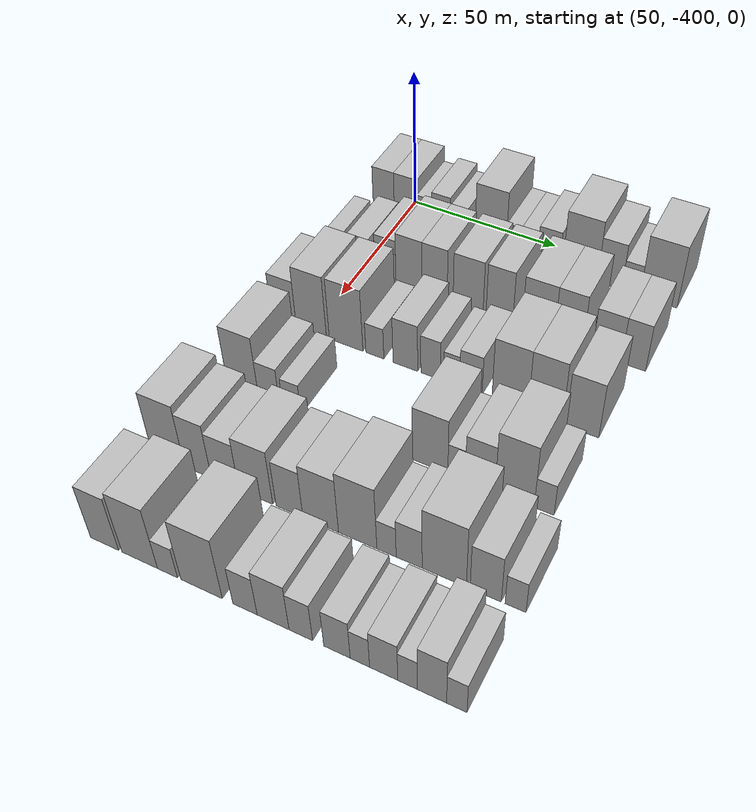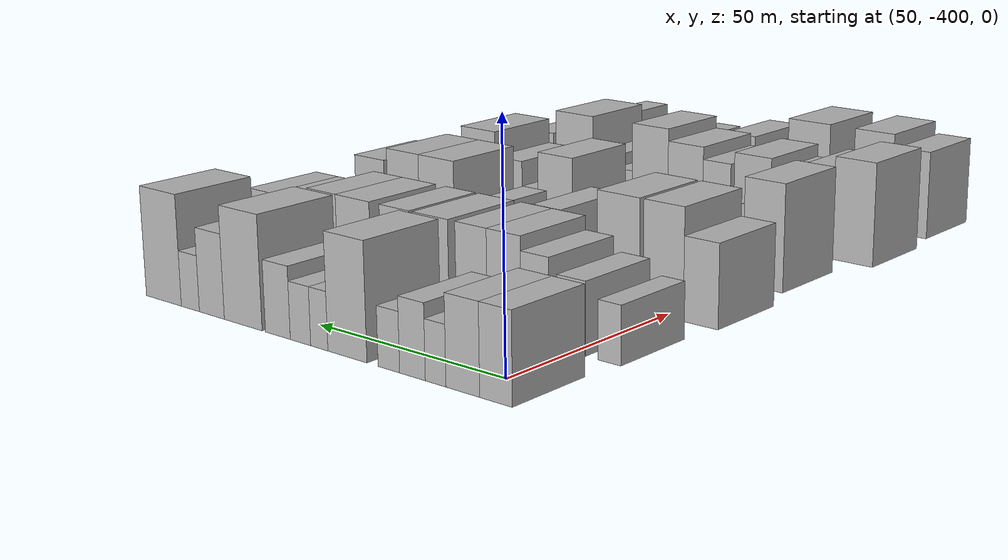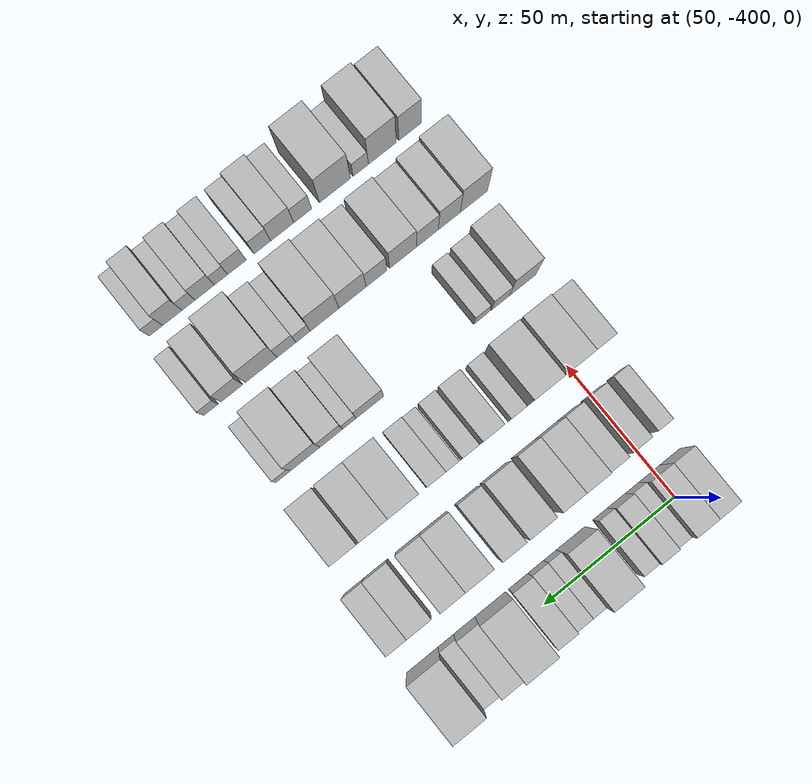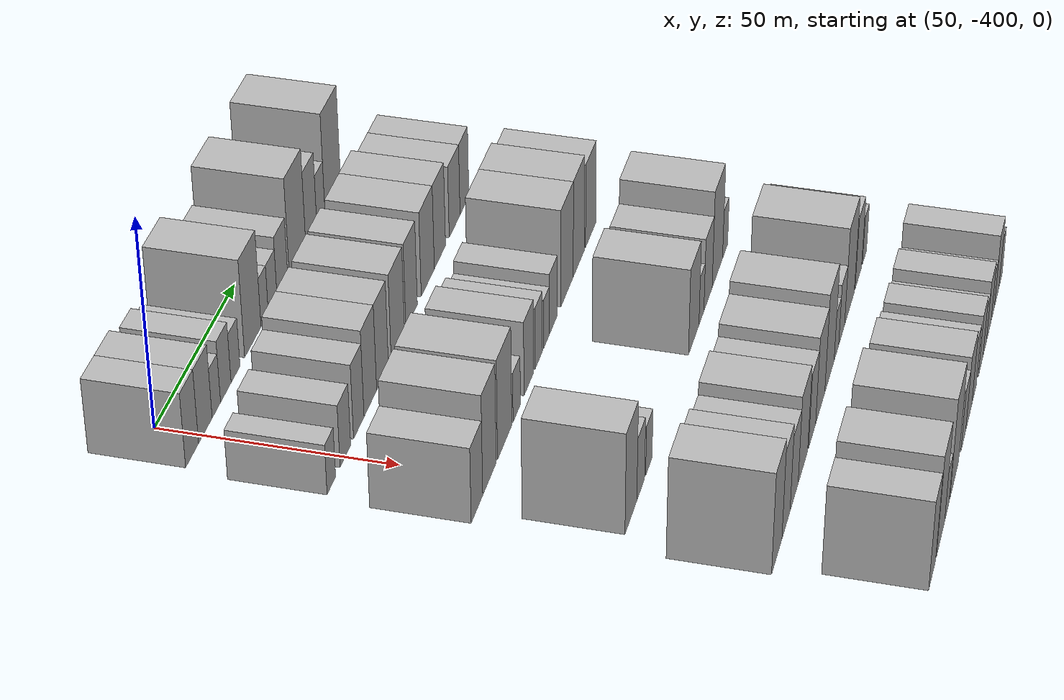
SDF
<sdf version="1.6">
 <world name="default">
  <model name="building_11">
   <static>1</static>
   <pose>50.0000 -406.6065 0 0.000000 0.000000 0.000000</pose>
   <link name="link">
    <pose>0 0 9.00 0 0 0</pose>
    <collision name="collision"><geometry><box><size>20.0000 7.7887 18.0000</size></box></geometry></collision>
    <visual name="visual">
     <cast_shadows>0</cast_shadows>
     <geometry><box><size>20.0000 7.7887 18.0000</size></box></geometry>
     <material>
      <script>
       <uri>model://HANNAS_wall/materials/scripts</uri>
       <uri>model://HANNAS_wall/materials/textures</uri>
       <name>vrc/HANNAS_wall</name>
      </script>
     </material>
    </visual>
   </link>
  </model>
  <model name="building_12">
   <static>1</static>
   <pose>50.0000 -398.5526 0 0.000000 0.000000 0.000000</pose>
   <link name="link">
    <pose>0 0 9.00 0 0 0</pose>
    <collision name="collision"><geometry><box><size>20.0000 8.3190 18.0000</size></box></geometry></collision>
    <visual name="visual">
     <cast_shadows>0</cast_shadows>
     <geometry><box><size>20.0000 8.3190 18.0000</size></box></geometry>
     <material>
      <script>
       <uri>model://HANNAS_wall/materials/scripts</uri>
       <uri>model://HANNAS_wall/materials/textures</uri>
       <name>vrc/HANNAS_wall</name>
      </script>
     </material>
    </visual>
   </link>
  </model>
  <model name="building_13">
   <static>1</static>
   <pose>50.0000 -391.7792 0 0.000000 0.000000 0.000000</pose>
   <link name="link">
    <pose>0 0 6.00 0 0 0</pose>
    <collision name="collision"><geometry><box><size>20.0000 5.2278 12.0000</size></box></geometry></collision>
    <visual name="visual">
     <cast_shadows>0</cast_shadows>
     <geometry><box><size>20.0000 5.2278 12.0000</size></box></geometry>
     <material>
      <script>
       <uri>model://HANNAS_wall/materials/scripts</uri>
       <uri>model://HANNAS_wall/materials/textures</uri>
       <name>vrc/HANNAS_wall</name>
      </script>
     </material>
    </visual>
   </link>
  </model>
  <model name="building_14">
   <static>1</static>
   <pose>50.0000 -385.8373 0 0.000000 0.000000 0.000000</pose>
   <link name="link">
    <pose>0 0 7.50 0 0 0</pose>
    <collision name="collision"><geometry><box><size>20.0000 6.6561 15.0000</size></box></geometry></collision>
    <visual name="visual">
     <cast_shadows>0</cast_shadows>
     <geometry><box><size>20.0000 6.6561 15.0000</size></box></geometry>
     <material>
      <script>
       <uri>model://HANNAS_wall/materials/scripts</uri>
       <uri>model://HANNAS_wall/materials/textures</uri>
       <name>vrc/HANNAS_wall</name>
      </script>
     </material>
    </visual>
   </link>
  </model>
  <model name="building_15">
   <static>1</static>
   <pose>50.0000 -379.6564 0 0.000000 0.000000 0.000000</pose>
   <link name="link">
    <pose>0 0 6.00 0 0 0</pose>
    <collision name="collision"><geometry><box><size>20.0000 5.7058 12.0000</size></box></geometry></collision>
    <visual name="visual">
     <cast_shadows>0</cast_shadows>
     <geometry><box><size>20.0000 5.7058 12.0000</size></box></geometry>
     <material>
      <script>
       <uri>model://HANNAS_wall/materials/scripts</uri>
       <uri>model://HANNAS_wall/materials/textures</uri>
       <name>vrc/HANNAS_wall</name>
      </script>
     </material>
    </visual>
   </link>
  </model>
  <model name="building_16">
   <static>1</static>
   <pose>50.0000 -368.4051 0 0.000000 0.000000 0.000000</pose>
   <link name="link">
    <pose>0 0 12.00 0 0 0</pose>
    <collision name="collision"><geometry><box><size>20.0000 10.7967 24.0000</size></box></geometry></collision>
    <visual name="visual">
     <cast_shadows>0</cast_shadows>
     <geometry><box><size>20.0000 10.7967 24.0000</size></box></geometry>
     <material>
      <script>
       <uri>model://HANNAS_wall/materials/scripts</uri>
       <uri>model://HANNAS_wall/materials/textures</uri>
       <name>vrc/HANNAS_wall</name>
      </script>
     </material>
    </visual>
   </link>
  </model>
  <model name="building_17">
   <static>1</static>
   <pose>50.0000 -360.5677 0 0.000000 0.000000 0.000000</pose>
   <link name="link">
    <pose>0 0 6.00 0 0 0</pose>
    <collision name="collision"><geometry><box><size>20.0000 4.8780 12.0000</size></box></geometry></collision>
    <visual name="visual">
     <cast_shadows>0</cast_shadows>
     <geometry><box><size>20.0000 4.8780 12.0000</size></box></geometry>
     <material>
      <script>
       <uri>model://HANNAS_wall/materials/scripts</uri>
       <uri>model://HANNAS_wall/materials/textures</uri>
       <name>vrc/HANNAS_wall</name>
      </script>
     </material>
    </visual>
   </link>
  </model>
  <model name="building_18">
   <static>1</static>
   <pose>50.0000 -355.1719 0 0.000000 0.000000 0.000000</pose>
   <link name="link">
    <pose>0 0 6.00 0 0 0</pose>
    <collision name="collision"><geometry><box><size>20.0000 5.9137 12.0000</size></box></geometry></collision>
    <visual name="visual">
     <cast_shadows>0</cast_shadows>
     <geometry><box><size>20.0000 5.9137 12.0000</size></box></geometry>
     <material>
      <script>
       <uri>model://HANNAS_wall/materials/scripts</uri>
       <uri>model://HANNAS_wall/materials/textures</uri>
       <name>vrc/HANNAS_wall</name>
      </script>
     </material>
    </visual>
   </link>
  </model>
  <model name="building_19">
   <static>1</static>
   <pose>50.0000 -348.5238 0 0.000000 0.000000 0.000000</pose>
   <link name="link">
    <pose>0 0 7.50 0 0 0</pose>
    <collision name="collision"><geometry><box><size>20.0000 7.3824 15.0000</size></box></geometry></collision>
    <visual name="visual">
     <cast_shadows>0</cast_shadows>
     <geometry><box><size>20.0000 7.3824 15.0000</size></box></geometry>
     <material>
      <script>
       <uri>model://HANNAS_wall/materials/scripts</uri>
       <uri>model://HANNAS_wall/materials/textures</uri>
       <name>vrc/HANNAS_wall</name>
      </script>
     </material>
    </visual>
   </link>
  </model>
  <model name="building_20">
   <static>1</static>
   <pose>50.0000 -338.0146 0 0.000000 0.000000 0.000000</pose>
   <link name="link">
    <pose>0 0 12.00 0 0 0</pose>
    <collision name="collision"><geometry><box><size>20.0000 11.6361 24.0000</size></box></geometry></collision>
    <visual name="visual">
     <cast_shadows>0</cast_shadows>
     <geometry><box><size>20.0000 11.6361 24.0000</size></box></geometry>
     <material>
      <script>
       <uri>model://HANNAS_wall/materials/scripts</uri>
       <uri>model://HANNAS_wall/materials/textures</uri>
       <name>vrc/HANNAS_wall</name>
      </script>
     </material>
    </visual>
   </link>
  </model>
  <model name="building_21">
   <static>1</static>
   <pose>50.0000 -328.2203 0 0.000000 0.000000 0.000000</pose>
   <link name="link">
    <pose>0 0 9.00 0 0 0</pose>
    <collision name="collision"><geometry><box><size>20.0000 7.9525 18.0000</size></box></geometry></collision>
    <visual name="visual">
     <cast_shadows>0</cast_shadows>
     <geometry><box><size>20.0000 7.9525 18.0000</size></box></geometry>
     <material>
      <script>
       <uri>model://HANNAS_wall/materials/scripts</uri>
       <uri>model://HANNAS_wall/materials/textures</uri>
       <name>vrc/HANNAS_wall</name>
      </script>
     </material>
    </visual>
   </link>
  </model>
  <model name="building_22">
   <static>1</static>
   <pose>50.0000 -321.3090 0 0.000000 0.000000 0.000000</pose>
   <link name="link">
    <pose>0 0 6.00 0 0 0</pose>
    <collision name="collision"><geometry><box><size>20.0000 5.8701 12.0000</size></box></geometry></collision>
    <visual name="visual">
     <cast_shadows>0</cast_shadows>
     <geometry><box><size>20.0000 5.8701 12.0000</size></box></geometry>
     <material>
      <script>
       <uri>model://HANNAS_wall/materials/scripts</uri>
       <uri>model://HANNAS_wall/materials/textures</uri>
       <name>vrc/HANNAS_wall</name>
      </script>
     </material>
    </visual>
   </link>
  </model>
  <model name="building_23">
   <static>1</static>
   <pose>50.0000 -312.5059 0 0.000000 0.000000 0.000000</pose>
   <link name="link">
    <pose>0 0 12.00 0 0 0</pose>
    <collision name="collision"><geometry><box><size>20.0000 11.7361 24.0000</size></box></geometry></collision>
    <visual name="visual">
     <cast_shadows>0</cast_shadows>
     <geometry><box><size>20.0000 11.7361 24.0000</size></box></geometry>
     <material>
      <script>
       <uri>model://HANNAS_wall/materials/scripts</uri>
       <uri>model://HANNAS_wall/materials/textures</uri>
       <name>vrc/HANNAS_wall</name>
      </script>
     </material>
    </visual>
   </link>
  </model>
  <model name="building_133">
   <static>1</static>
   <pose>79.0000 -409.1889 0 0.000000 0.000000 0.000000</pose>
   <link name="link">
    <pose>0 0 6.00 0 0 0</pose>
    <collision name="collision"><geometry><box><size>20.0000 5.6237 12.0000</size></box></geometry></collision>
    <visual name="visual">
     <cast_shadows>0</cast_shadows>
     <geometry><box><size>20.0000 5.6237 12.0000</size></box></geometry>
     <material>
      <script>
       <uri>model://HANNAS_wall/materials/scripts</uri>
       <uri>model://HANNAS_wall/materials/textures</uri>
       <name>vrc/HANNAS_wall</name>
      </script>
     </material>
    </visual>
   </link>
  </model>
  <model name="building_134">
   <static>1</static>
   <pose>79.0000 -399.7991 0 0.000000 0.000000 0.000000</pose>
   <link name="link">
    <pose>0 0 7.50 0 0 0</pose>
    <collision name="collision"><geometry><box><size>20.0000 7.1558 15.0000</size></box></geometry></collision>
    <visual name="visual">
     <cast_shadows>0</cast_shadows>
     <geometry><box><size>20.0000 7.1558 15.0000</size></box></geometry>
     <material>
      <script>
       <uri>model://HANNAS_wall/materials/scripts</uri>
       <uri>model://HANNAS_wall/materials/textures</uri>
       <name>vrc/HANNAS_wall</name>
      </script>
     </material>
    </visual>
   </link>
  </model>
  <model name="building_135">
   <static>1</static>
   <pose>79.0000 -390.6033 0 0.000000 0.000000 0.000000</pose>
   <link name="link">
    <pose>0 0 9.00 0 0 0</pose>
    <collision name="collision"><geometry><box><size>20.0000 7.2359 18.0000</size></box></geometry></collision>
    <visual name="visual">
     <cast_shadows>0</cast_shadows>
     <geometry><box><size>20.0000 7.2359 18.0000</size></box></geometry>
     <material>
      <script>
       <uri>model://HANNAS_wall/materials/scripts</uri>
       <uri>model://HANNAS_wall/materials/textures</uri>
       <name>vrc/HANNAS_wall</name>
      </script>
     </material>
    </visual>
   </link>
  </model>
  <model name="building_136">
   <static>1</static>
   <pose>79.0000 -382.5261 0 0.000000 0.000000 0.000000</pose>
   <link name="link">
    <pose>0 0 10.50 0 0 0</pose>
    <collision name="collision"><geometry><box><size>20.0000 8.9184 21.0000</size></box></geometry></collision>
    <visual name="visual">
     <cast_shadows>0</cast_shadows>
     <geometry><box><size>20.0000 8.9184 21.0000</size></box></geometry>
     <material>
      <script>
       <uri>model://HANNAS_wall/materials/scripts</uri>
       <uri>model://HANNAS_wall/materials/textures</uri>
       <name>vrc/HANNAS_wall</name>
      </script>
     </material>
    </visual>
   </link>
  </model>
  <model name="building_137">
   <static>1</static>
   <pose>79.0000 -373.8276 0 0.000000 0.000000 0.000000</pose>
   <link name="link">
    <pose>0 0 10.50 0 0 0</pose>
    <collision name="collision"><geometry><box><size>20.0000 8.4788 21.0000</size></box></geometry></collision>
    <visual name="visual">
     <cast_shadows>0</cast_shadows>
     <geometry><box><size>20.0000 8.4788 21.0000</size></box></geometry>
     <material>
      <script>
       <uri>model://HANNAS_wall/materials/scripts</uri>
       <uri>model://HANNAS_wall/materials/textures</uri>
       <name>vrc/HANNAS_wall</name>
      </script>
     </material>
    </visual>
   </link>
  </model>
  <model name="building_138">
   <static>1</static>
   <pose>79.0000 -362.6345 0 0.000000 0.000000 0.000000</pose>
   <link name="link">
    <pose>0 0 10.50 0 0 0</pose>
    <collision name="collision"><geometry><box><size>20.0000 9.9073 21.0000</size></box></geometry></collision>
    <visual name="visual">
     <cast_shadows>0</cast_shadows>
     <geometry><box><size>20.0000 9.9073 21.0000</size></box></geometry>
     <material>
      <script>
       <uri>model://HANNAS_wall/materials/scripts</uri>
       <uri>model://HANNAS_wall/materials/textures</uri>
       <name>vrc/HANNAS_wall</name>
      </script>
     </material>
    </visual>
   </link>
  </model>
  <model name="building_139">
   <static>1</static>
   <pose>79.0000 -352.3471 0 0.000000 0.000000 0.000000</pose>
   <link name="link">
    <pose>0 0 10.50 0 0 0</pose>
    <collision name="collision"><geometry><box><size>20.0000 8.6675 21.0000</size></box></geometry></collision>
    <visual name="visual">
     <cast_shadows>0</cast_shadows>
     <geometry><box><size>20.0000 8.6675 21.0000</size></box></geometry>
     <material>
      <script>
       <uri>model://HANNAS_wall/materials/scripts</uri>
       <uri>model://HANNAS_wall/materials/textures</uri>
       <name>vrc/HANNAS_wall</name>
      </script>
     </material>
    </visual>
   </link>
  </model>
  <model name="building_140">
   <static>1</static>
   <pose>79.0000 -339.8901 0 0.000000 0.000000 0.000000</pose>
   <link name="link">
    <pose>0 0 10.50 0 0 0</pose>
    <collision name="collision"><geometry><box><size>20.0000 10.2466 21.0000</size></box></geometry></collision>
    <visual name="visual">
     <cast_shadows>0</cast_shadows>
     <geometry><box><size>20.0000 10.2466 21.0000</size></box></geometry>
     <material>
      <script>
       <uri>model://HANNAS_wall/materials/scripts</uri>
       <uri>model://HANNAS_wall/materials/textures</uri>
       <name>vrc/HANNAS_wall</name>
      </script>
     </material>
    </visual>
   </link>
  </model>
  <model name="building_141">
   <static>1</static>
   <pose>79.0000 -330.3184 0 0.000000 0.000000 0.000000</pose>
   <link name="link">
    <pose>0 0 10.50 0 0 0</pose>
    <collision name="collision"><geometry><box><size>20.0000 8.8969 21.0000</size></box></geometry></collision>
    <visual name="visual">
     <cast_shadows>0</cast_shadows>
     <geometry><box><size>20.0000 8.8969 21.0000</size></box></geometry>
     <material>
      <script>
       <uri>model://HANNAS_wall/materials/scripts</uri>
       <uri>model://HANNAS_wall/materials/textures</uri>
       <name>vrc/HANNAS_wall</name>
      </script>
     </material>
    </visual>
   </link>
  </model>
  <model name="building_142">
   <static>1</static>
   <pose>79.0000 -318.4423 0 0.000000 0.000000 0.000000</pose>
   <link name="link">
    <pose>0 0 9.00 0 0 0</pose>
    <collision name="collision"><geometry><box><size>20.0000 8.8553 18.0000</size></box></geometry></collision>
    <visual name="visual">
     <cast_shadows>0</cast_shadows>
     <geometry><box><size>20.0000 8.8553 18.0000</size></box></geometry>
     <material>
      <script>
       <uri>model://HANNAS_wall/materials/scripts</uri>
       <uri>model://HANNAS_wall/materials/textures</uri>
       <name>vrc/HANNAS_wall</name>
      </script>
     </material>
    </visual>
   </link>
  </model>
  <model name="building_143">
   <static>1</static>
   <pose>79.0000 -310.3603 0 0.000000 0.000000 0.000000</pose>
   <link name="link">
    <pose>0 0 9.00 0 0 0</pose>
    <collision name="collision"><geometry><box><size>20.0000 7.3086 18.0000</size></box></geometry></collision>
    <visual name="visual">
     <cast_shadows>0</cast_shadows>
     <geometry><box><size>20.0000 7.3086 18.0000</size></box></geometry>
     <material>
      <script>
       <uri>model://HANNAS_wall/materials/scripts</uri>
       <uri>model://HANNAS_wall/materials/textures</uri>
       <name>vrc/HANNAS_wall</name>
      </script>
     </material>
    </visual>
   </link>
  </model>
  <model name="building_244">
   <static>1</static>
   <pose>108.0000 -409.5011 0 0.000000 0.000000 0.000000</pose>
   <link name="link">
    <pose>0 0 9.00 0 0 0</pose>
    <collision name="collision"><geometry><box><size>20.0000 8.5862 18.0000</size></box></geometry></collision>
    <visual name="visual">
     <cast_shadows>0</cast_shadows>
     <geometry><box><size>20.0000 8.5862 18.0000</size></box></geometry>
     <material>
      <script>
       <uri>model://HANNAS_wall/materials/scripts</uri>
       <uri>model://HANNAS_wall/materials/textures</uri>
       <name>vrc/HANNAS_wall</name>
      </script>
     </material>
    </visual>
   </link>
  </model>
  <model name="building_245">
   <static>1</static>
   <pose>108.0000 -400.0662 0 0.000000 0.000000 0.000000</pose>
   <link name="link">
    <pose>0 0 12.00 0 0 0</pose>
    <collision name="collision"><geometry><box><size>20.0000 10.2836 24.0000</size></box></geometry></collision>
    <visual name="visual">
     <cast_shadows>0</cast_shadows>
     <geometry><box><size>20.0000 10.2836 24.0000</size></box></geometry>
     <material>
      <script>
       <uri>model://HANNAS_wall/materials/scripts</uri>
       <uri>model://HANNAS_wall/materials/textures</uri>
       <name>vrc/HANNAS_wall</name>
      </script>
     </material>
    </visual>
   </link>
  </model>
  <model name="building_246">
   <static>1</static>
   <pose>108.0000 -388.3227 0 0.000000 0.000000 0.000000</pose>
   <link name="link">
    <pose>0 0 12.00 0 0 0</pose>
    <collision name="collision"><geometry><box><size>20.0000 11.2035 24.0000</size></box></geometry></collision>
    <visual name="visual">
     <cast_shadows>0</cast_shadows>
     <geometry><box><size>20.0000 11.2035 24.0000</size></box></geometry>
     <material>
      <script>
       <uri>model://HANNAS_wall/materials/scripts</uri>
       <uri>model://HANNAS_wall/materials/textures</uri>
       <name>vrc/HANNAS_wall</name>
      </script>
     </material>
    </visual>
   </link>
  </model>
  <model name="building_247">
   <static>1</static>
   <pose>108.0000 -378.7743 0 0.000000 0.000000 0.000000</pose>
   <link name="link">
    <pose>0 0 6.00 0 0 0</pose>
    <collision name="collision"><geometry><box><size>20.0000 5.8934 12.0000</size></box></geometry></collision>
    <visual name="visual">
     <cast_shadows>0</cast_shadows>
     <geometry><box><size>20.0000 5.8934 12.0000</size></box></geometry>
     <material>
      <script>
       <uri>model://HANNAS_wall/materials/scripts</uri>
       <uri>model://HANNAS_wall/materials/textures</uri>
       <name>vrc/HANNAS_wall</name>
      </script>
     </material>
    </visual>
   </link>
  </model>
  <model name="building_248">
   <static>1</static>
   <pose>108.0000 -368.8648 0 0.000000 0.000000 0.000000</pose>
   <link name="link">
    <pose>0 0 9.00 0 0 0</pose>
    <collision name="collision"><geometry><box><size>20.0000 7.9257 18.0000</size></box></geometry></collision>
    <visual name="visual">
     <cast_shadows>0</cast_shadows>
     <geometry><box><size>20.0000 7.9257 18.0000</size></box></geometry>
     <material>
      <script>
       <uri>model://HANNAS_wall/materials/scripts</uri>
       <uri>model://HANNAS_wall/materials/textures</uri>
       <name>vrc/HANNAS_wall</name>
      </script>
     </material>
    </visual>
   </link>
  </model>
  <model name="building_249">
   <static>1</static>
   <pose>108.0000 -360.7716 0 0.000000 0.000000 0.000000</pose>
   <link name="link">
    <pose>0 0 7.50 0 0 0</pose>
    <collision name="collision"><geometry><box><size>20.0000 6.2607 15.0000</size></box></geometry></collision>
    <visual name="visual">
     <cast_shadows>0</cast_shadows>
     <geometry><box><size>20.0000 6.2607 15.0000</size></box></geometry>
     <material>
      <script>
       <uri>model://HANNAS_wall/materials/scripts</uri>
       <uri>model://HANNAS_wall/materials/textures</uri>
       <name>vrc/HANNAS_wall</name>
      </script>
     </material>
    </visual>
   </link>
  </model>
  <model name="building_250">
   <static>1</static>
   <pose>108.0000 -354.1531 0 0.000000 0.000000 0.000000</pose>
   <link name="link">
    <pose>0 0 6.00 0 0 0</pose>
    <collision name="collision"><geometry><box><size>20.0000 4.9763 12.0000</size></box></geometry></collision>
    <visual name="visual">
     <cast_shadows>0</cast_shadows>
     <geometry><box><size>20.0000 4.9763 12.0000</size></box></geometry>
     <material>
      <script>
       <uri>model://HANNAS_wall/materials/scripts</uri>
       <uri>model://HANNAS_wall/materials/textures</uri>
       <name>vrc/HANNAS_wall</name>
      </script>
     </material>
    </visual>
   </link>
  </model>
  <model name="building_251">
   <static>1</static>
   <pose>108.0000 -348.1886 0 0.000000 0.000000 0.000000</pose>
   <link name="link">
    <pose>0 0 7.50 0 0 0</pose>
    <collision name="collision"><geometry><box><size>20.0000 6.9526 15.0000</size></box></geometry></collision>
    <visual name="visual">
     <cast_shadows>0</cast_shadows>
     <geometry><box><size>20.0000 6.9526 15.0000</size></box></geometry>
     <material>
      <script>
       <uri>model://HANNAS_wall/materials/scripts</uri>
       <uri>model://HANNAS_wall/materials/textures</uri>
       <name>vrc/HANNAS_wall</name>
      </script>
     </material>
    </visual>
   </link>
  </model>
  <model name="building_252">
   <static>1</static>
   <pose>108.0000 -336.2560 0 0.000000 0.000000 0.000000</pose>
   <link name="link">
    <pose>0 0 12.00 0 0 0</pose>
    <collision name="collision"><geometry><box><size>20.0000 10.9125 24.0000</size></box></geometry></collision>
    <visual name="visual">
     <cast_shadows>0</cast_shadows>
     <geometry><box><size>20.0000 10.9125 24.0000</size></box></geometry>
     <material>
      <script>
       <uri>model://HANNAS_wall/materials/scripts</uri>
       <uri>model://HANNAS_wall/materials/textures</uri>
       <name>vrc/HANNAS_wall</name>
      </script>
     </material>
    </visual>
   </link>
  </model>
  <model name="building_253">
   <static>1</static>
   <pose>108.0000 -325.7269 0 0.000000 0.000000 0.000000</pose>
   <link name="link">
    <pose>0 0 12.00 0 0 0</pose>
    <collision name="collision"><geometry><box><size>20.0000 10.1458 24.0000</size></box></geometry></collision>
    <visual name="visual">
     <cast_shadows>0</cast_shadows>
     <geometry><box><size>20.0000 10.1458 24.0000</size></box></geometry>
     <material>
      <script>
       <uri>model://HANNAS_wall/materials/scripts</uri>
       <uri>model://HANNAS_wall/materials/textures</uri>
       <name>vrc/HANNAS_wall</name>
      </script>
     </material>
    </visual>
   </link>
  </model>
  <model name="building_254">
   <static>1</static>
   <pose>108.0000 -314.8561 0 0.000000 0.000000 0.000000</pose>
   <link name="link">
    <pose>0 0 10.50 0 0 0</pose>
    <collision name="collision"><geometry><box><size>20.0000 9.5957 21.0000</size></box></geometry></collision>
    <visual name="visual">
     <cast_shadows>0</cast_shadows>
     <geometry><box><size>20.0000 9.5957 21.0000</size></box></geometry>
     <material>
      <script>
       <uri>model://HANNAS_wall/materials/scripts</uri>
       <uri>model://HANNAS_wall/materials/textures</uri>
       <name>vrc/HANNAS_wall</name>
      </script>
     </material>
    </visual>
   </link>
  </model>
  <model name="building_358">
   <static>1</static>
   <pose>137.0000 -405.0357 0 0.000000 0.000000 0.000000</pose>
   <link name="link">
    <pose>0 0 12.00 0 0 0</pose>
    <collision name="collision"><geometry><box><size>20.0000 10.2689 24.0000</size></box></geometry></collision>
    <visual name="visual">
     <cast_shadows>0</cast_shadows>
     <geometry><box><size>20.0000 10.2689 24.0000</size></box></geometry>
     <material>
      <script>
       <uri>model://HANNAS_wall/materials/scripts</uri>
       <uri>model://HANNAS_wall/materials/textures</uri>
       <name>vrc/HANNAS_wall</name>
      </script>
     </material>
    </visual>
   </link>
  </model>
  <model name="building_359">
   <static>1</static>
   <pose>137.0000 -396.4722 0 0.000000 0.000000 0.000000</pose>
   <link name="link">
    <pose>0 0 7.50 0 0 0</pose>
    <collision name="collision"><geometry><box><size>20.0000 6.8582 15.0000</size></box></geometry></collision>
    <visual name="visual">
     <cast_shadows>0</cast_shadows>
     <geometry><box><size>20.0000 6.8582 15.0000</size></box></geometry>
     <material>
      <script>
       <uri>model://HANNAS_wall/materials/scripts</uri>
       <uri>model://HANNAS_wall/materials/textures</uri>
       <name>vrc/HANNAS_wall</name>
      </script>
     </material>
    </visual>
   </link>
  </model>
  <model name="building_360">
   <static>1</static>
   <pose>137.0000 -389.1574 0 0.000000 0.000000 0.000000</pose>
   <link name="link">
    <pose>0 0 6.00 0 0 0</pose>
    <collision name="collision"><geometry><box><size>20.0000 5.7712 12.0000</size></box></geometry></collision>
    <visual name="visual">
     <cast_shadows>0</cast_shadows>
     <geometry><box><size>20.0000 5.7712 12.0000</size></box></geometry>
     <material>
      <script>
       <uri>model://HANNAS_wall/materials/scripts</uri>
       <uri>model://HANNAS_wall/materials/textures</uri>
       <name>vrc/HANNAS_wall</name>
      </script>
     </material>
    </visual>
   </link>
  </model>
  <model name="building_361">
   <static>1</static>
   <pose>137.0000 -346.5961 0 0.000000 0.000000 0.000000</pose>
   <link name="link">
    <pose>0 0 10.50 0 0 0</pose>
    <collision name="collision"><geometry><box><size>20.0000 10.4505 21.0000</size></box></geometry></collision>
    <visual name="visual">
     <cast_shadows>0</cast_shadows>
     <geometry><box><size>20.0000 10.4505 21.0000</size></box></geometry>
     <material>
      <script>
       <uri>model://HANNAS_wall/materials/scripts</uri>
       <uri>model://HANNAS_wall/materials/textures</uri>
       <name>vrc/HANNAS_wall</name>
      </script>
     </material>
    </visual>
   </link>
  </model>
  <model name="building_362">
   <static>1</static>
   <pose>137.0000 -338.8550 0 0.000000 0.000000 0.000000</pose>
   <link name="link">
    <pose>0 0 6.00 0 0 0</pose>
    <collision name="collision"><geometry><box><size>20.0000 5.0316 12.0000</size></box></geometry></collision>
    <visual name="visual">
     <cast_shadows>0</cast_shadows>
     <geometry><box><size>20.0000 5.0316 12.0000</size></box></geometry>
     <material>
      <script>
       <uri>model://HANNAS_wall/materials/scripts</uri>
       <uri>model://HANNAS_wall/materials/textures</uri>
       <name>vrc/HANNAS_wall</name>
      </script>
     </material>
    </visual>
   </link>
  </model>
  <model name="building_363">
   <static>1</static>
   <pose>137.0000 -332.0544 0 0.000000 0.000000 0.000000</pose>
   <link name="link">
    <pose>0 0 9.00 0 0 0</pose>
    <collision name="collision"><geometry><box><size>20.0000 8.5697 18.0000</size></box></geometry></collision>
    <visual name="visual">
     <cast_shadows>0</cast_shadows>
     <geometry><box><size>20.0000 8.5697 18.0000</size></box></geometry>
     <material>
      <script>
       <uri>model://HANNAS_wall/materials/scripts</uri>
       <uri>model://HANNAS_wall/materials/textures</uri>
       <name>vrc/HANNAS_wall</name>
      </script>
     </material>
    </visual>
   </link>
  </model>
  <model name="building_364">
   <static>1</static>
   <pose>137.0000 -322.2930 0 0.000000 0.000000 0.000000</pose>
   <link name="link">
    <pose>0 0 12.00 0 0 0</pose>
    <collision name="collision"><geometry><box><size>20.0000 10.9530 24.0000</size></box></geometry></collision>
    <visual name="visual">
     <cast_shadows>0</cast_shadows>
     <geometry><box><size>20.0000 10.9530 24.0000</size></box></geometry>
     <material>
      <script>
       <uri>model://HANNAS_wall/materials/scripts</uri>
       <uri>model://HANNAS_wall/materials/textures</uri>
       <name>vrc/HANNAS_wall</name>
      </script>
     </material>
    </visual>
   </link>
  </model>
  <model name="building_365">
   <static>1</static>
   <pose>137.0000 -314.0875 0 0.000000 0.000000 0.000000</pose>
   <link name="link">
    <pose>0 0 6.00 0 0 0</pose>
    <collision name="collision"><geometry><box><size>20.0000 5.4580 12.0000</size></box></geometry></collision>
    <visual name="visual">
     <cast_shadows>0</cast_shadows>
     <geometry><box><size>20.0000 5.4580 12.0000</size></box></geometry>
     <material>
      <script>
       <uri>model://HANNAS_wall/materials/scripts</uri>
       <uri>model://HANNAS_wall/materials/textures</uri>
       <name>vrc/HANNAS_wall</name>
      </script>
     </material>
    </visual>
   </link>
  </model>
  <model name="building_462">
   <static>1</static>
   <pose>166.0000 -409.8661 0 0.000000 0.000000 0.000000</pose>
   <link name="link">
    <pose>0 0 12.00 0 0 0</pose>
    <collision name="collision"><geometry><box><size>20.0000 10.5329 24.0000</size></box></geometry></collision>
    <visual name="visual">
     <cast_shadows>0</cast_shadows>
     <geometry><box><size>20.0000 10.5329 24.0000</size></box></geometry>
     <material>
      <script>
       <uri>model://HANNAS_wall/materials/scripts</uri>
       <uri>model://HANNAS_wall/materials/textures</uri>
       <name>vrc/HANNAS_wall</name>
      </script>
     </material>
    </visual>
   </link>
  </model>
  <model name="building_463">
   <static>1</static>
   <pose>166.0000 -400.3642 0 0.000000 0.000000 0.000000</pose>
   <link name="link">
    <pose>0 0 10.50 0 0 0</pose>
    <collision name="collision"><geometry><box><size>20.0000 8.4708 21.0000</size></box></geometry></collision>
    <visual name="visual">
     <cast_shadows>0</cast_shadows>
     <geometry><box><size>20.0000 8.4708 21.0000</size></box></geometry>
     <material>
      <script>
       <uri>model://HANNAS_wall/materials/scripts</uri>
       <uri>model://HANNAS_wall/materials/textures</uri>
       <name>vrc/HANNAS_wall</name>
      </script>
     </material>
    </visual>
   </link>
  </model>
  <model name="building_464">
   <static>1</static>
   <pose>166.0000 -391.8662 0 0.000000 0.000000 0.000000</pose>
   <link name="link">
    <pose>0 0 9.00 0 0 0</pose>
    <collision name="collision"><geometry><box><size>20.0000 8.5253 18.0000</size></box></geometry></collision>
    <visual name="visual">
     <cast_shadows>0</cast_shadows>
     <geometry><box><size>20.0000 8.5253 18.0000</size></box></geometry>
     <material>
      <script>
       <uri>model://HANNAS_wall/materials/scripts</uri>
       <uri>model://HANNAS_wall/materials/textures</uri>
       <name>vrc/HANNAS_wall</name>
      </script>
     </material>
    </visual>
   </link>
  </model>
  <model name="building_465">
   <static>1</static>
   <pose>166.0000 -382.4514 0 0.000000 0.000000 0.000000</pose>
   <link name="link">
    <pose>0 0 10.50 0 0 0</pose>
    <collision name="collision"><geometry><box><size>20.0000 10.3044 21.0000</size></box></geometry></collision>
    <visual name="visual">
     <cast_shadows>0</cast_shadows>
     <geometry><box><size>20.0000 10.3044 21.0000</size></box></geometry>
     <material>
      <script>
       <uri>model://HANNAS_wall/materials/scripts</uri>
       <uri>model://HANNAS_wall/materials/textures</uri>
       <name>vrc/HANNAS_wall</name>
      </script>
     </material>
    </visual>
   </link>
  </model>
  <model name="building_466">
   <static>1</static>
   <pose>166.0000 -372.3032 0 0.000000 0.000000 0.000000</pose>
   <link name="link">
    <pose>0 0 9.00 0 0 0</pose>
    <collision name="collision"><geometry><box><size>20.0000 7.9921 18.0000</size></box></geometry></collision>
    <visual name="visual">
     <cast_shadows>0</cast_shadows>
     <geometry><box><size>20.0000 7.9921 18.0000</size></box></geometry>
     <material>
      <script>
       <uri>model://HANNAS_wall/materials/scripts</uri>
       <uri>model://HANNAS_wall/materials/textures</uri>
       <name>vrc/HANNAS_wall</name>
      </script>
     </material>
    </visual>
   </link>
  </model>
  <model name="building_467">
   <static>1</static>
   <pose>166.0000 -363.1088 0 0.000000 0.000000 0.000000</pose>
   <link name="link">
    <pose>0 0 10.50 0 0 0</pose>
    <collision name="collision"><geometry><box><size>20.0000 10.3966 21.0000</size></box></geometry></collision>
    <visual name="visual">
     <cast_shadows>0</cast_shadows>
     <geometry><box><size>20.0000 10.3966 21.0000</size></box></geometry>
     <material>
      <script>
       <uri>model://HANNAS_wall/materials/scripts</uri>
       <uri>model://HANNAS_wall/materials/textures</uri>
       <name>vrc/HANNAS_wall</name>
      </script>
     </material>
    </visual>
   </link>
  </model>
  <model name="building_468">
   <static>1</static>
   <pose>166.0000 -352.4361 0 0.000000 0.000000 0.000000</pose>
   <link name="link">
    <pose>0 0 12.00 0 0 0</pose>
    <collision name="collision"><geometry><box><size>20.0000 10.9488 24.0000</size></box></geometry></collision>
    <visual name="visual">
     <cast_shadows>0</cast_shadows>
     <geometry><box><size>20.0000 10.9488 24.0000</size></box></geometry>
     <material>
      <script>
       <uri>model://HANNAS_wall/materials/scripts</uri>
       <uri>model://HANNAS_wall/materials/textures</uri>
       <name>vrc/HANNAS_wall</name>
      </script>
     </material>
    </visual>
   </link>
  </model>
  <model name="building_469">
   <static>1</static>
   <pose>166.0000 -344.2544 0 0.000000 0.000000 0.000000</pose>
   <link name="link">
    <pose>0 0 6.00 0 0 0</pose>
    <collision name="collision"><geometry><box><size>20.0000 5.4146 12.0000</size></box></geometry></collision>
    <visual name="visual">
     <cast_shadows>0</cast_shadows>
     <geometry><box><size>20.0000 5.4146 12.0000</size></box></geometry>
     <material>
      <script>
       <uri>model://HANNAS_wall/materials/scripts</uri>
       <uri>model://HANNAS_wall/materials/textures</uri>
       <name>vrc/HANNAS_wall</name>
      </script>
     </material>
    </visual>
   </link>
  </model>
  <model name="building_470">
   <static>1</static>
   <pose>166.0000 -337.9637 0 0.000000 0.000000 0.000000</pose>
   <link name="link">
    <pose>0 0 7.50 0 0 0</pose>
    <collision name="collision"><geometry><box><size>20.0000 7.1667 15.0000</size></box></geometry></collision>
    <visual name="visual">
     <cast_shadows>0</cast_shadows>
     <geometry><box><size>20.0000 7.1667 15.0000</size></box></geometry>
     <material>
      <script>
       <uri>model://HANNAS_wall/materials/scripts</uri>
       <uri>model://HANNAS_wall/materials/textures</uri>
       <name>vrc/HANNAS_wall</name>
      </script>
     </material>
    </visual>
   </link>
  </model>
  <model name="building_471">
   <static>1</static>
   <pose>166.0000 -328.4073 0 0.000000 0.000000 0.000000</pose>
   <link name="link">
    <pose>0 0 12.00 0 0 0</pose>
    <collision name="collision"><geometry><box><size>20.0000 11.9462 24.0000</size></box></geometry></collision>
    <visual name="visual">
     <cast_shadows>0</cast_shadows>
     <geometry><box><size>20.0000 11.9462 24.0000</size></box></geometry>
     <material>
      <script>
       <uri>model://HANNAS_wall/materials/scripts</uri>
       <uri>model://HANNAS_wall/materials/textures</uri>
       <name>vrc/HANNAS_wall</name>
      </script>
     </material>
    </visual>
   </link>
  </model>
  <model name="building_472">
   <static>1</static>
   <pose>166.0000 -317.3225 0 0.000000 0.000000 0.000000</pose>
   <link name="link">
    <pose>0 0 9.00 0 0 0</pose>
    <collision name="collision"><geometry><box><size>20.0000 8.2235 18.0000</size></box></geometry></collision>
    <visual name="visual">
     <cast_shadows>0</cast_shadows>
     <geometry><box><size>20.0000 8.2235 18.0000</size></box></geometry>
     <material>
      <script>
       <uri>model://HANNAS_wall/materials/scripts</uri>
       <uri>model://HANNAS_wall/materials/textures</uri>
       <name>vrc/HANNAS_wall</name>
      </script>
     </material>
    </visual>
   </link>
  </model>
  <model name="building_473">
   <static>1</static>
   <pose>166.0000 -309.5042 0 0.000000 0.000000 0.000000</pose>
   <link name="link">
    <pose>0 0 6.00 0 0 0</pose>
    <collision name="collision"><geometry><box><size>20.0000 5.4131 12.0000</size></box></geometry></collision>
    <visual name="visual">
     <cast_shadows>0</cast_shadows>
     <geometry><box><size>20.0000 5.4131 12.0000</size></box></geometry>
     <material>
      <script>
       <uri>model://HANNAS_wall/materials/scripts</uri>
       <uri>model://HANNAS_wall/materials/textures</uri>
       <name>vrc/HANNAS_wall</name>
      </script>
     </material>
    </visual>
   </link>
  </model>
  <model name="building_579">
   <static>1</static>
   <pose>195.0000 -408.4415 0 0.000000 0.000000 0.000000</pose>
   <link name="link">
    <pose>0 0 10.50 0 0 0</pose>
    <collision name="collision"><geometry><box><size>20.0000 8.6452 21.0000</size></box></geometry></collision>
    <visual name="visual">
     <cast_shadows>0</cast_shadows>
     <geometry><box><size>20.0000 8.6452 21.0000</size></box></geometry>
     <material>
      <script>
       <uri>model://HANNAS_wall/materials/scripts</uri>
       <uri>model://HANNAS_wall/materials/textures</uri>
       <name>vrc/HANNAS_wall</name>
      </script>
     </material>
    </visual>
   </link>
  </model>
  <model name="building_580">
   <static>1</static>
   <pose>195.0000 -397.7364 0 0.000000 0.000000 0.000000</pose>
   <link name="link">
    <pose>0 0 12.00 0 0 0</pose>
    <collision name="collision"><geometry><box><size>20.0000 10.7650 24.0000</size></box></geometry></collision>
    <visual name="visual">
     <cast_shadows>0</cast_shadows>
     <geometry><box><size>20.0000 10.7650 24.0000</size></box></geometry>
     <material>
      <script>
       <uri>model://HANNAS_wall/materials/scripts</uri>
       <uri>model://HANNAS_wall/materials/textures</uri>
       <name>vrc/HANNAS_wall</name>
      </script>
     </material>
    </visual>
   </link>
  </model>
  <model name="building_581">
   <static>1</static>
   <pose>195.0000 -389.3899 0 0.000000 0.000000 0.000000</pose>
   <link name="link">
    <pose>0 0 6.00 0 0 0</pose>
    <collision name="collision"><geometry><box><size>20.0000 5.9280 12.0000</size></box></geometry></collision>
    <visual name="visual">
     <cast_shadows>0</cast_shadows>
     <geometry><box><size>20.0000 5.9280 12.0000</size></box></geometry>
     <material>
      <script>
       <uri>model://HANNAS_wall/materials/scripts</uri>
       <uri>model://HANNAS_wall/materials/textures</uri>
       <name>vrc/HANNAS_wall</name>
      </script>
     </material>
    </visual>
   </link>
  </model>
  <model name="building_582">
   <static>1</static>
   <pose>195.0000 -379.4324 0 0.000000 0.000000 0.000000</pose>
   <link name="link">
    <pose>0 0 12.00 0 0 0</pose>
    <collision name="collision"><geometry><box><size>20.0000 11.9871 24.0000</size></box></geometry></collision>
    <visual name="visual">
     <cast_shadows>0</cast_shadows>
     <geometry><box><size>20.0000 11.9871 24.0000</size></box></geometry>
     <material>
      <script>
       <uri>model://HANNAS_wall/materials/scripts</uri>
       <uri>model://HANNAS_wall/materials/textures</uri>
       <name>vrc/HANNAS_wall</name>
      </script>
     </material>
    </visual>
   </link>
  </model>
  <model name="building_583">
   <static>1</static>
   <pose>195.0000 -367.0172 0 0.000000 0.000000 0.000000</pose>
   <link name="link">
    <pose>0 0 7.50 0 0 0</pose>
    <collision name="collision"><geometry><box><size>20.0000 6.8433 15.0000</size></box></geometry></collision>
    <visual name="visual">
     <cast_shadows>0</cast_shadows>
     <geometry><box><size>20.0000 6.8433 15.0000</size></box></geometry>
     <material>
      <script>
       <uri>model://HANNAS_wall/materials/scripts</uri>
       <uri>model://HANNAS_wall/materials/textures</uri>
       <name>vrc/HANNAS_wall</name>
      </script>
     </material>
    </visual>
   </link>
  </model>
  <model name="building_584">
   <static>1</static>
   <pose>195.0000 -359.1719 0 0.000000 0.000000 0.000000</pose>
   <link name="link">
    <pose>0 0 9.00 0 0 0</pose>
    <collision name="collision"><geometry><box><size>20.0000 8.8473 18.0000</size></box></geometry></collision>
    <visual name="visual">
     <cast_shadows>0</cast_shadows>
     <geometry><box><size>20.0000 8.8473 18.0000</size></box></geometry>
     <material>
      <script>
       <uri>model://HANNAS_wall/materials/scripts</uri>
       <uri>model://HANNAS_wall/materials/textures</uri>
       <name>vrc/HANNAS_wall</name>
      </script>
     </material>
    </visual>
   </link>
  </model>
  <model name="building_585">
   <static>1</static>
   <pose>195.0000 -351.5522 0 0.000000 0.000000 0.000000</pose>
   <link name="link">
    <pose>0 0 7.50 0 0 0</pose>
    <collision name="collision"><geometry><box><size>20.0000 6.3920 15.0000</size></box></geometry></collision>
    <visual name="visual">
     <cast_shadows>0</cast_shadows>
     <geometry><box><size>20.0000 6.3920 15.0000</size></box></geometry>
     <material>
      <script>
       <uri>model://HANNAS_wall/materials/scripts</uri>
       <uri>model://HANNAS_wall/materials/textures</uri>
       <name>vrc/HANNAS_wall</name>
      </script>
     </material>
    </visual>
   </link>
  </model>
  <model name="building_586">
   <static>1</static>
   <pose>195.0000 -341.8506 0 0.000000 0.000000 0.000000</pose>
   <link name="link">
    <pose>0 0 7.50 0 0 0</pose>
    <collision name="collision"><geometry><box><size>20.0000 7.0112 15.0000</size></box></geometry></collision>
    <visual name="visual">
     <cast_shadows>0</cast_shadows>
     <geometry><box><size>20.0000 7.0112 15.0000</size></box></geometry>
     <material>
      <script>
       <uri>model://HANNAS_wall/materials/scripts</uri>
       <uri>model://HANNAS_wall/materials/textures</uri>
       <name>vrc/HANNAS_wall</name>
      </script>
     </material>
    </visual>
   </link>
  </model>
  <model name="building_587">
   <static>1</static>
   <pose>195.0000 -335.8088 0 0.000000 0.000000 0.000000</pose>
   <link name="link">
    <pose>0 0 6.00 0 0 0</pose>
    <collision name="collision"><geometry><box><size>20.0000 5.0725 12.0000</size></box></geometry></collision>
    <visual name="visual">
     <cast_shadows>0</cast_shadows>
     <geometry><box><size>20.0000 5.0725 12.0000</size></box></geometry>
     <material>
      <script>
       <uri>model://HANNAS_wall/materials/scripts</uri>
       <uri>model://HANNAS_wall/materials/textures</uri>
       <name>vrc/HANNAS_wall</name>
      </script>
     </material>
    </visual>
   </link>
  </model>
  <model name="building_588">
   <static>1</static>
   <pose>195.0000 -329.6300 0 0.000000 0.000000 0.000000</pose>
   <link name="link">
    <pose>0 0 7.50 0 0 0</pose>
    <collision name="collision"><geometry><box><size>20.0000 7.2851 15.0000</size></box></geometry></collision>
    <visual name="visual">
     <cast_shadows>0</cast_shadows>
     <geometry><box><size>20.0000 7.2851 15.0000</size></box></geometry>
     <material>
      <script>
       <uri>model://HANNAS_wall/materials/scripts</uri>
       <uri>model://HANNAS_wall/materials/textures</uri>
       <name>vrc/HANNAS_wall</name>
      </script>
     </material>
    </visual>
   </link>
  </model>
  <model name="building_589">
   <static>1</static>
   <pose>195.0000 -323.5049 0 0.000000 0.000000 0.000000</pose>
   <link name="link">
    <pose>0 0 6.00 0 0 0</pose>
    <collision name="collision"><geometry><box><size>20.0000 4.9650 12.0000</size></box></geometry></collision>
    <visual name="visual">
     <cast_shadows>0</cast_shadows>
     <geometry><box><size>20.0000 4.9650 12.0000</size></box></geometry>
     <material>
      <script>
       <uri>model://HANNAS_wall/materials/scripts</uri>
       <uri>model://HANNAS_wall/materials/textures</uri>
       <name>vrc/HANNAS_wall</name>
      </script>
     </material>
    </visual>
   </link>
  </model>
  <model name="building_590">
   <static>1</static>
   <pose>195.0000 -317.3722 0 0.000000 0.000000 0.000000</pose>
   <link name="link">
    <pose>0 0 9.00 0 0 0</pose>
    <collision name="collision"><geometry><box><size>20.0000 7.3004 18.0000</size></box></geometry></collision>
    <visual name="visual">
     <cast_shadows>0</cast_shadows>
     <geometry><box><size>20.0000 7.3004 18.0000</size></box></geometry>
     <material>
      <script>
       <uri>model://HANNAS_wall/materials/scripts</uri>
       <uri>model://HANNAS_wall/materials/textures</uri>
       <name>vrc/HANNAS_wall</name>
      </script>
     </material>
    </visual>
   </link>
  </model>
  <model name="building_591">
   <static>1</static>
   <pose>195.0000 -311.2027 0 0.000000 0.000000 0.000000</pose>
   <link name="link">
    <pose>0 0 6.00 0 0 0</pose>
    <collision name="collision"><geometry><box><size>20.0000 5.0386 12.0000</size></box></geometry></collision>
    <visual name="visual">
     <cast_shadows>0</cast_shadows>
     <geometry><box><size>20.0000 5.0386 12.0000</size></box></geometry>
     <material>
      <script>
       <uri>model://HANNAS_wall/materials/scripts</uri>
       <uri>model://HANNAS_wall/materials/textures</uri>
       <name>vrc/HANNAS_wall</name>
      </script>
     </material>
    </visual>
   </link>
  </model>
 </world>
</sdf>
